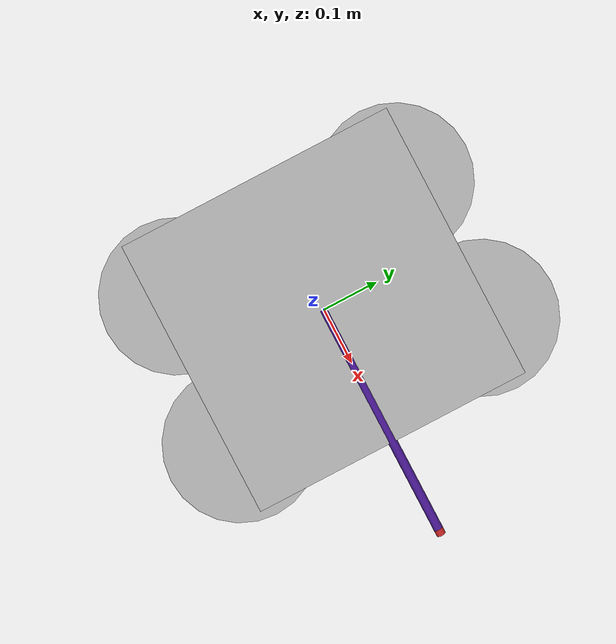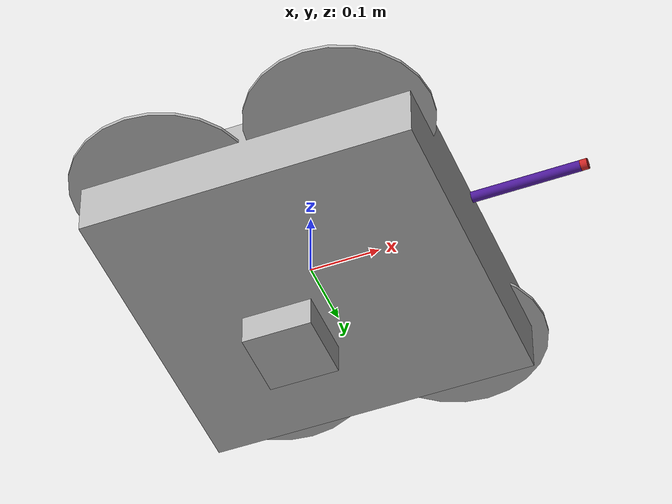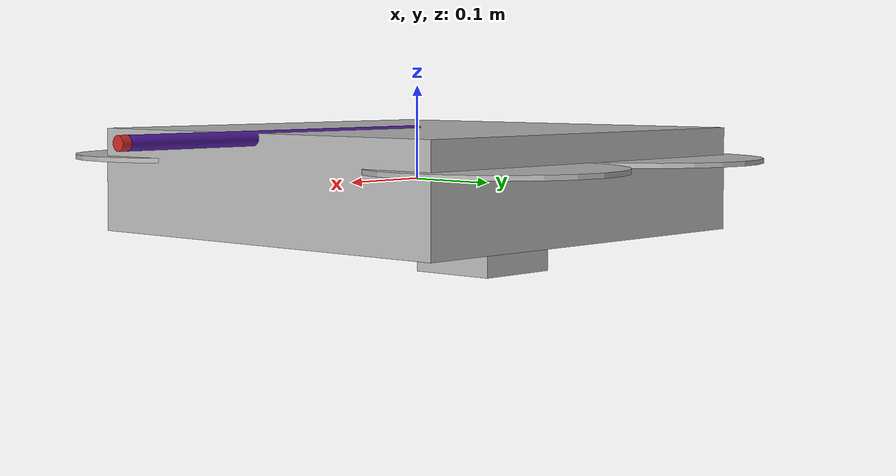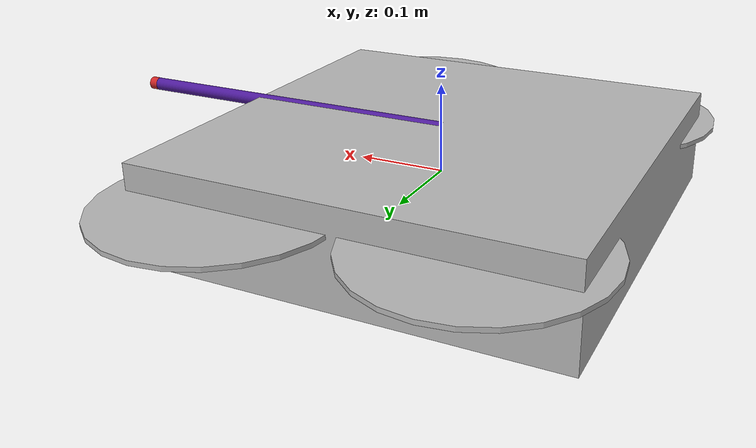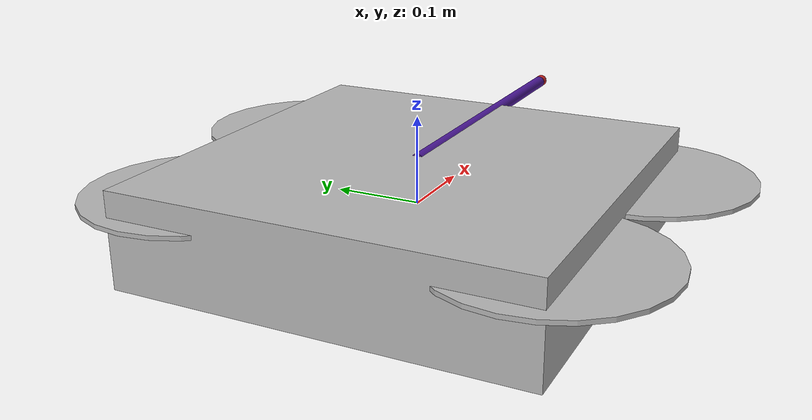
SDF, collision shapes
<?xml version='1.0'?>
<sdf version='1.5'>
  <model name='Test UAV'>

    <include>
      <uri>model://iris</uri>
    </include>

    <include>
      <uri>model://fpv_cam</uri>
      <pose>0 0 0 0 1.57 1.57</pose>
    </include>

    <joint name="fpv_cam_joint" type="fixed">
      <child>fpv_cam::link</child>
      <parent>iris::base_link</parent>
      <axis>
        <xyz>0 0 1</xyz>
        <limit>
          <upper>0</upper>
          <lower>0</lower>
        </limit>
      </axis>
    </joint>

    <!--定义连杆-->
    <link name="Link0">
	    <pose>0.195 0 0.05 0 -1.57 0</pose>
        <inertial>
          <mass>0.001</mass>
          <inertia>
            <ixx>1.3347395e-04</ixx>
            <ixy>0</ixy>
            <ixz>0</ixz>
            <iyy>1.3347395e-04</iyy>
            <iyz>0</iyz>
            <izz>2.8125e-06</izz>
          </inertia>
        </inertial>
      <collision name  = 'collision0'>
        <geometry>
		      <cylinder>
			      <radius>0.0075</radius>
            <length>0.39</length>
          </cylinder>
        </geometry>
        <max_contacts>10</max_contacts>
        <surface>
          <contact>
            <ode/>
          </contact>
          <bounce/>
          <friction>
            <ode/>
          </friction>
        </surface>
      </collision>
      <visual name='visual0'>
        <geometry>
		      <cylinder>
		      	<radius>0.0075</radius>
            <length>0.39</length>
          </cylinder>
        </geometry>
        <material>
          <script>
            <name>Gazebo/Indigo</name>
          </script>
        </material>
      </visual>
    </link>

    <joint name="Link0_joint" type="fixed">
      <child>Link0</child>
      <parent>iris::base_link</parent>
      <axis>
        <xyz>0 0 0</xyz>
        <limit>
          <upper>0</upper>
          <lower>0</lower>
        </limit>
      </axis>
    </joint>

    <link name="sensor_link">
      <pose>0.395 0 0.05 0 -1.57 0</pose>
      <inertial>
        <mass>0.01</mass>
        <inertia>
    	  <ixx>7.1441e-05</ixx>
    	  <ixy>0.0</ixy>
    	  <ixz>0.0</ixz>
    	  <iyy>7.146e-05</iyy>
    	  <iyz>0.0</iyz>
  	    <izz>1.3366e-05</izz>
        </inertia>
      </inertial>
      <collision name  = 'force_sensor_collision'>
        <geometry>
	  <cylinder>
	    <radius>0.0075</radius>
            <length>0.01</length>
          </cylinder>
        </geometry>
      </collision>
      <visual name='force_sensor_visual'>
        <geometry>
          <cylinder>
            <radius>0.0075</radius>
            <length>0.001</length>
          </cylinder>
        </geometry>
        <material>
          <script>
            <name>Gazebo/Red</name>
          </script>
        </material>
      </visual>
    </link>

    <joint name="force_sensor_joint" type="revolute">
      <child>sensor_link</child>
      <parent>Link0</parent>
      <axis>
        <limit>
          <lower>-1.57079</lower>
          <upper>1.57079</upper>
        </limit>
        <dynamics>
          <damping>0.000000</damping>
          <friction>0.000000</friction>
        </dynamics>
        <xyz>0.000000 0.000000 0.000000</xyz>
      </axis>
      <sensor name="force_torque" type="force_torque">
      </sensor>
    </joint>

    <plugin name="ft_sensor" filename="libgazebo_ros_ft_sensor.so">
      <updateRate>30.0</updateRate>
      <topicName>iris/force_sensor/ft_sensor_topic</topicName>
      <jointName>force_sensor_joint</jointName>
    </plugin>

  </model>
</sdf>

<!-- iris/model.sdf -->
<!-- DO NOT EDIT: Generated from iris.sdf.jinja -->
<sdf version='1.6'>
  <model name='iris'>
    <link name='base_link'>
      <pose>0 0 0 0 0 0</pose>
      <inertial>
        <pose>0 0 0 0 0 0</pose>
        <mass>1.5</mass>
        <inertia>
          <ixx>0.029125</ixx>
          <ixy>0</ixy>
          <ixz>0</ixz>
          <iyy>0.029125</iyy>
          <iyz>0</iyz>
          <izz>0.055225</izz>
        </inertia>
      </inertial>
      <collision name='base_link_inertia_collision'>
        <pose>0 0 0 0 0 0</pose>
        <geometry>
          <box>
            <size>0.47 0.47 0.11</size>
          </box>
        </geometry>
        <surface>
          <contact>
            <ode>
              <min_depth>0.001</min_depth>
              <max_vel>0</max_vel>
            </ode>
          </contact>
          <friction>
            <ode/>
          </friction>
        </surface>
      </collision>
      <visual name='base_link_inertia_visual'>
        <pose>0 0 0 0 0 0</pose>
        <geometry>
          <mesh>
            <scale>1 1 1</scale>
            <uri>model://iris/meshes/iris.stl</uri>
          </mesh>
        </geometry>
      </visual>
      <gravity>1</gravity>
      <velocity_decay/>
    </link>
    <link name='/imu_link'>
      <pose>0 0 0 0 0 0</pose>
      <inertial>
        <pose>0 0 0 0 0 0</pose>
        <mass>0.015</mass>
        <inertia>
          <ixx>1e-05</ixx>
          <ixy>0</ixy>
          <ixz>0</ixz>
          <iyy>1e-05</iyy>
          <iyz>0</iyz>
          <izz>1e-05</izz>
        </inertia>
      </inertial>
    </link>
    <joint name='/imu_joint' type='revolute'>
      <child>/imu_link</child>
      <parent>base_link</parent>
      <axis>
        <xyz>1 0 0</xyz>
        <limit>
          <lower>0</lower>
          <upper>0</upper>
          <effort>0</effort>
          <velocity>0</velocity>
        </limit>
        <dynamics>
          <spring_reference>0</spring_reference>
          <spring_stiffness>0</spring_stiffness>
        </dynamics>
        <use_parent_model_frame>1</use_parent_model_frame>
      </axis>
    </joint>
    <link name='rotor_0'>
      <pose>0.13 -0.22 0.023 0 0 0</pose>
      <inertial>
        <pose>0 0 0 0 0 0</pose>
        <mass>0.005</mass>
        <inertia>
          <ixx>9.75e-07</ixx>
          <ixy>0</ixy>
          <ixz>0</ixz>
          <iyy>0.000273104</iyy>
          <iyz>0</iyz>
          <izz>0.000274004</izz>
        </inertia>
      </inertial>
      <collision name='rotor_0_collision'>
        <pose>0 0 0 0 0 0</pose>
        <geometry>
          <cylinder>
            <length>0.005</length>
            <radius>0.128</radius>
          </cylinder>
        </geometry>
        <surface>
          <contact>
            <ode/>
          </contact>
          <friction>
            <ode/>
          </friction>
        </surface>
      </collision>
      <visual name='rotor_0_visual'>
        <pose>0 0 0 0 0 0</pose>
        <geometry>
          <mesh>
            <scale>1 1 1</scale>
            <uri>model://iris/meshes/iris_prop_ccw.dae</uri>
          </mesh>
        </geometry>
      </visual>
      <gravity>1</gravity>
      <velocity_decay/>
    </link>
    <joint name='rotor_0_joint' type='revolute'>
      <child>rotor_0</child>
      <parent>base_link</parent>
      <axis>
        <xyz>0 0 1</xyz>
        <limit>
          <lower>-1e+16</lower>
          <upper>1e+16</upper>
        </limit>
        <dynamics>
          <spring_reference>0</spring_reference>
          <spring_stiffness>0</spring_stiffness>
        </dynamics>
        <use_parent_model_frame>1</use_parent_model_frame>
      </axis>
    </joint>
    <link name='rotor_1'>
      <pose>-0.13 0.2 0.023 0 0 0</pose>
      <inertial>
        <pose>0 0 0 0 0 0</pose>
        <mass>0.005</mass>
        <inertia>
          <ixx>9.75e-07</ixx>
          <ixy>0</ixy>
          <ixz>0</ixz>
          <iyy>0.000273104</iyy>
          <iyz>0</iyz>
          <izz>0.000274004</izz>
        </inertia>
      </inertial>
      <collision name='rotor_1_collision'>
        <pose>0 0 0 0 0 0</pose>
        <geometry>
          <cylinder>
            <length>0.005</length>
            <radius>0.128</radius>
          </cylinder>
        </geometry>
        <surface>
          <contact>
            <ode/>
          </contact>
          <friction>
            <ode/>
          </friction>
        </surface>
      </collision>
      <visual name='rotor_1_visual'>
        <pose>0 0 0 0 0 0</pose>
        <geometry>
          <mesh>
            <scale>1 1 1</scale>
            <uri>model://iris/meshes/iris_prop_ccw.dae</uri>
          </mesh>
        </geometry>
      </visual>
      <gravity>1</gravity>
      <velocity_decay/>
    </link>
    <joint name='rotor_1_joint' type='revolute'>
      <child>rotor_1</child>
      <parent>base_link</parent>
      <axis>
        <xyz>0 0 1</xyz>
        <limit>
          <lower>-1e+16</lower>
          <upper>1e+16</upper>
        </limit>
        <dynamics>
          <spring_reference>0</spring_reference>
          <spring_stiffness>0</spring_stiffness>
        </dynamics>
        <use_parent_model_frame>1</use_parent_model_frame>
      </axis>
    </joint>
    <link name='rotor_2'>
      <pose>0.13 0.22 0.023 0 0 0</pose>
      <inertial>
        <pose>0 0 0 0 0 0</pose>
        <mass>0.005</mass>
        <inertia>
          <ixx>9.75e-07</ixx>
          <ixy>0</ixy>
          <ixz>0</ixz>
          <iyy>0.000273104</iyy>
          <iyz>0</iyz>
          <izz>0.000274004</izz>
        </inertia>
      </inertial>
      <collision name='rotor_2_collision'>
        <pose>0 0 0 0 0 0</pose>
        <geometry>
          <cylinder>
            <length>0.005</length>
            <radius>0.128</radius>
          </cylinder>
        </geometry>
        <surface>
          <contact>
            <ode/>
          </contact>
          <friction>
            <ode/>
          </friction>
        </surface>
      </collision>
      <visual name='rotor_2_visual'>
        <pose>0 0 0 0 0 0</pose>
        <geometry>
          <mesh>
            <scale>1 1 1</scale>
            <uri>model://iris/meshes/iris_prop_cw.dae</uri>
          </mesh>
        </geometry>
      </visual>
      <gravity>1</gravity>
      <velocity_decay/>
    </link>
    <joint name='rotor_2_joint' type='revolute'>
      <child>rotor_2</child>
      <parent>base_link</parent>
      <axis>
        <xyz>0 0 1</xyz>
        <limit>
          <lower>-1e+16</lower>
          <upper>1e+16</upper>
        </limit>
        <dynamics>
          <spring_reference>0</spring_reference>
          <spring_stiffness>0</spring_stiffness>
        </dynamics>
        <use_parent_model_frame>1</use_parent_model_frame>
      </axis>
    </joint>
    <link name='rotor_3'>
      <pose>-0.13 -0.2 0.023 0 0 0</pose>
      <inertial>
        <pose>0 0 0 0 0 0</pose>
        <mass>0.005</mass>
        <inertia>
          <ixx>9.75e-07</ixx>
          <ixy>0</ixy>
          <ixz>0</ixz>
          <iyy>0.000273104</iyy>
          <iyz>0</iyz>
          <izz>0.000274004</izz>
        </inertia>
      </inertial>
      <collision name='rotor_3_collision'>
        <pose>0 0 0 0 0 0</pose>
        <geometry>
          <cylinder>
            <length>0.005</length>
            <radius>0.128</radius>
          </cylinder>
        </geometry>
        <surface>
          <contact>
            <ode/>
          </contact>
          <friction>
            <ode/>
          </friction>
        </surface>
      </collision>
      <visual name='rotor_3_visual'>
        <pose>0 0 0 0 0 0</pose>
        <geometry>
          <mesh>
            <scale>1 1 1</scale>
            <uri>model://iris/meshes/iris_prop_cw.dae</uri>
          </mesh>
        </geometry>
      </visual>
      <gravity>1</gravity>
      <velocity_decay/>
    </link>
    <joint name='rotor_3_joint' type='revolute'>
      <child>rotor_3</child>
      <parent>base_link</parent>
      <axis>
        <xyz>0 0 1</xyz>
        <limit>
          <lower>-1e+16</lower>
          <upper>1e+16</upper>
        </limit>
        <dynamics>
          <spring_reference>0</spring_reference>
          <spring_stiffness>0</spring_stiffness>
        </dynamics>
        <use_parent_model_frame>1</use_parent_model_frame>
      </axis>
    </joint>
    <plugin name='rosbag' filename='libgazebo_multirotor_base_plugin.so'>
      <robotNamespace/>
      <linkName>base_link</linkName>
      <rotorVelocitySlowdownSim>10</rotorVelocitySlowdownSim>
    </plugin>
    <plugin name='front_right_motor_model' filename='libgazebo_motor_model.so'>
      <robotNamespace/>
      <jointName>rotor_0_joint</jointName>
      <linkName>rotor_0</linkName>
      <turningDirection>ccw</turningDirection>
      <timeConstantUp>0.0125</timeConstantUp>
      <timeConstantDown>0.025</timeConstantDown>
      <maxRotVelocity>1100</maxRotVelocity>
      <motorConstant>5.84e-06</motorConstant>
      <momentConstant>0.06</momentConstant>
      <commandSubTopic>/gazebo/command/motor_speed</commandSubTopic>
      <motorNumber>0</motorNumber>
      <rotorDragCoefficient>0.000175</rotorDragCoefficient>
      <rollingMomentCoefficient>1e-06</rollingMomentCoefficient>
      <motorSpeedPubTopic>/motor_speed/0</motorSpeedPubTopic>
      <rotorVelocitySlowdownSim>10</rotorVelocitySlowdownSim>
    </plugin>
    <plugin name='back_left_motor_model' filename='libgazebo_motor_model.so'>
      <robotNamespace/>
      <jointName>rotor_1_joint</jointName>
      <linkName>rotor_1</linkName>
      <turningDirection>ccw</turningDirection>
      <timeConstantUp>0.0125</timeConstantUp>
      <timeConstantDown>0.025</timeConstantDown>
      <maxRotVelocity>1100</maxRotVelocity>
      <motorConstant>5.84e-06</motorConstant>
      <momentConstant>0.06</momentConstant>
      <commandSubTopic>/gazebo/command/motor_speed</commandSubTopic>
      <motorNumber>1</motorNumber>
      <rotorDragCoefficient>0.000175</rotorDragCoefficient>
      <rollingMomentCoefficient>1e-06</rollingMomentCoefficient>
      <motorSpeedPubTopic>/motor_speed/1</motorSpeedPubTopic>
      <rotorVelocitySlowdownSim>10</rotorVelocitySlowdownSim>
    </plugin>
    <plugin name='front_left_motor_model' filename='libgazebo_motor_model.so'>
      <robotNamespace/>
      <jointName>rotor_2_joint</jointName>
      <linkName>rotor_2</linkName>
      <turningDirection>cw</turningDirection>
      <timeConstantUp>0.0125</timeConstantUp>
      <timeConstantDown>0.025</timeConstantDown>
      <maxRotVelocity>1100</maxRotVelocity>
      <motorConstant>5.84e-06</motorConstant>
      <momentConstant>0.06</momentConstant>
      <commandSubTopic>/gazebo/command/motor_speed</commandSubTopic>
      <motorNumber>2</motorNumber>
      <rotorDragCoefficient>0.000175</rotorDragCoefficient>
      <rollingMomentCoefficient>1e-06</rollingMomentCoefficient>
      <motorSpeedPubTopic>/motor_speed/2</motorSpeedPubTopic>
      <rotorVelocitySlowdownSim>10</rotorVelocitySlowdownSim>
    </plugin>
    <plugin name='back_right_motor_model' filename='libgazebo_motor_model.so'>
      <robotNamespace/>
      <jointName>rotor_3_joint</jointName>
      <linkName>rotor_3</linkName>
      <turningDirection>cw</turningDirection>
      <timeConstantUp>0.0125</timeConstantUp>
      <timeConstantDown>0.025</timeConstantDown>
      <maxRotVelocity>1100</maxRotVelocity>
      <motorConstant>5.84e-06</motorConstant>
      <momentConstant>0.06</momentConstant>
      <commandSubTopic>/gazebo/command/motor_speed</commandSubTopic>
      <motorNumber>3</motorNumber>
      <rotorDragCoefficient>0.000175</rotorDragCoefficient>
      <rollingMomentCoefficient>1e-06</rollingMomentCoefficient>
      <motorSpeedPubTopic>/motor_speed/3</motorSpeedPubTopic>
      <rotorVelocitySlowdownSim>10</rotorVelocitySlowdownSim>
    </plugin>
    <model name='gps0'>
      <link name='link'>
        <pose>0 0 0 0 0 0</pose>
        <inertial>
          <pose>0 0 0 0 0 0</pose>
          <mass>0.01</mass>
          <inertia>
            <ixx>2.1733e-06</ixx>
            <ixy>0</ixy>
            <ixz>0</ixz>
            <iyy>2.1733e-06</iyy>
            <iyz>0</iyz>
            <izz>1.8e-07</izz>
          </inertia>
        </inertial>
        <visual name='visual'>
          <geometry>
            <cylinder>
              <radius>0.01</radius>
              <length>0.002</length>
            </cylinder>
          </geometry>
        </visual>
        <sensor name='gps' type='gps'>
          <pose>0 0 0 0 0 0</pose>
          <plugin name='gps_plugin' filename='libgazebo_gps_plugin.so'>
            <robotNamespace/>
            <gpsNoise>1</gpsNoise>
            <gpsXYRandomWalk>2.0</gpsXYRandomWalk>
            <gpsZRandomWalk>4.0</gpsZRandomWalk>
            <gpsXYNoiseDensity>0.0002</gpsXYNoiseDensity>
            <gpsZNoiseDensity>0.0004</gpsZNoiseDensity>
            <gpsVXYNoiseDensity>0.2</gpsVXYNoiseDensity>
            <gpsVZNoiseDensity>0.4</gpsVZNoiseDensity>
          </plugin>
        </sensor>
      </link>
    </model>
    <joint name='gps0_joint' type='fixed'>
      <parent>base_link</parent>
      <child>gps0::link</child>
    </joint>
    <plugin name='groundtruth_plugin' filename='libgazebo_groundtruth_plugin.so'>
      <robotNamespace/>
    </plugin>
    <plugin name='magnetometer_plugin' filename='libgazebo_magnetometer_plugin.so'>
      <robotNamespace/>
      <pubRate>100</pubRate>
      <noiseDensity>0.0004</noiseDensity>
      <randomWalk>6.4e-06</randomWalk>
      <biasCorrelationTime>600</biasCorrelationTime>
      <magTopic>/mag</magTopic>
    </plugin>
    <plugin name='barometer_plugin' filename='libgazebo_barometer_plugin.so'>
      <robotNamespace/>
      <pubRate>50</pubRate>
      <baroTopic>/baro</baroTopic>
      <baroDriftPaPerSec>0</baroDriftPaPerSec>
    </plugin>
    <plugin name='mavlink_interface' filename='libgazebo_mavlink_interface.so'>
      <robotNamespace/>
      <imuSubTopic>/imu</imuSubTopic>
      <magSubTopic>/mag</magSubTopic>
      <baroSubTopic>/baro</baroSubTopic>
      <mavlink_addr>INADDR_ANY</mavlink_addr>
      <mavlink_tcp_port>{{ mavlink_tcp_port }}</mavlink_tcp_port>
      <mavlink_udp_port>{{ mavlink_udp_port }}</mavlink_udp_port>
      <serialEnabled>{{ serial_enabled }}</serialEnabled>
      <serialDevice>{{ serial_device }}</serialDevice>
      <baudRate>{{ serial_baudrate }}</baudRate>
      <qgc_addr>INADDR_ANY</qgc_addr>
      <qgc_udp_port>14550</qgc_udp_port>
      <sdk_addr>INADDR_ANY</sdk_addr>
      <sdk_udp_port>14540</sdk_udp_port>
      <hil_mode>{{ hil_mode }}</hil_mode>
      <hil_state_level>0</hil_state_level>
      <send_vision_estimation>0</send_vision_estimation>
      <send_odometry>1</send_odometry>
      <enable_lockstep>1</enable_lockstep>
      <use_tcp>1</use_tcp>
      <motorSpeedCommandPubTopic>/gazebo/command/motor_speed</motorSpeedCommandPubTopic>
      <control_channels>
        <channel name='rotor1'>
          <input_index>0</input_index>
          <input_offset>0</input_offset>
          <input_scaling>1000</input_scaling>
          <zero_position_disarmed>0</zero_position_disarmed>
          <zero_position_armed>100</zero_position_armed>
          <joint_control_type>velocity</joint_control_type>
        </channel>
        <channel name='rotor2'>
          <input_index>1</input_index>
          <input_offset>0</input_offset>
          <input_scaling>1000</input_scaling>
          <zero_position_disarmed>0</zero_position_disarmed>
          <zero_position_armed>100</zero_position_armed>
          <joint_control_type>velocity</joint_control_type>
        </channel>
        <channel name='rotor3'>
          <input_index>2</input_index>
          <input_offset>0</input_offset>
          <input_scaling>1000</input_scaling>
          <zero_position_disarmed>0</zero_position_disarmed>
          <zero_position_armed>100</zero_position_armed>
          <joint_control_type>velocity</joint_control_type>
        </channel>
        <channel name='rotor4'>
          <input_index>3</input_index>
          <input_offset>0</input_offset>
          <input_scaling>1000</input_scaling>
          <zero_position_disarmed>0</zero_position_disarmed>
          <zero_position_armed>100</zero_position_armed>
          <joint_control_type>velocity</joint_control_type>
        </channel>
        <channel name='rotor5'>
          <input_index>4</input_index>
          <input_offset>1</input_offset>
          <input_scaling>324.6</input_scaling>
          <zero_position_disarmed>0</zero_position_disarmed>
          <zero_position_armed>0</zero_position_armed>
          <joint_control_type>velocity</joint_control_type>
          <joint_control_pid>
            <p>0.1</p>
            <i>0</i>
            <d>0</d>
            <iMax>0.0</iMax>
            <iMin>0.0</iMin>
            <cmdMax>2</cmdMax>
            <cmdMin>-2</cmdMin>
          </joint_control_pid>
          <joint_name>zephyr_delta_wing::propeller_joint</joint_name>
        </channel>
        <channel name='rotor6'>
          <input_index>5</input_index>
          <input_offset>0</input_offset>
          <input_scaling>0.524</input_scaling>
          <zero_position_disarmed>0</zero_position_disarmed>
          <zero_position_armed>0</zero_position_armed>
          <joint_control_type>position</joint_control_type>
          <joint_name>zephyr_delta_wing::flap_left_joint</joint_name>
          <joint_control_pid>
            <p>10.0</p>
            <i>0</i>
            <d>0</d>
            <iMax>0</iMax>
            <iMin>0</iMin>
            <cmdMax>20</cmdMax>
            <cmdMin>-20</cmdMin>
          </joint_control_pid>
        </channel>
        <channel name='rotor7'>
          <input_index>6</input_index>
          <input_offset>0</input_offset>
          <input_scaling>0.524</input_scaling>
          <zero_position_disarmed>0</zero_position_disarmed>
          <zero_position_armed>0</zero_position_armed>
          <joint_control_type>position</joint_control_type>
          <joint_name>zephyr_delta_wing::flap_right_joint</joint_name>
          <joint_control_pid>
            <p>10.0</p>
            <i>0</i>
            <d>0</d>
            <iMax>0</iMax>
            <iMin>0</iMin>
            <cmdMax>20</cmdMax>
            <cmdMin>-20</cmdMin>
          </joint_control_pid>
        </channel>
        <channel name='rotor8'>
          <input_index>7</input_index>
          <input_offset>0</input_offset>
          <input_scaling>0.524</input_scaling>
          <zero_position_disarmed>0</zero_position_disarmed>
          <zero_position_armed>0</zero_position_armed>
          <joint_control_type>position</joint_control_type>
        </channel>
      </control_channels>
    </plugin>
    <static>0</static>
    <plugin name='rotors_gazebo_imu_plugin' filename='libgazebo_imu_plugin.so'>
      <robotNamespace/>
      <linkName>/imu_link</linkName>
      <imuTopic>/imu</imuTopic>
      <gyroscopeNoiseDensity>0.00018665</gyroscopeNoiseDensity>
      <gyroscopeRandomWalk>3.8785e-05</gyroscopeRandomWalk>
      <gyroscopeBiasCorrelationTime>1000.0</gyroscopeBiasCorrelationTime>
      <gyroscopeTurnOnBiasSigma>0.0087</gyroscopeTurnOnBiasSigma>
      <accelerometerNoiseDensity>0.00186</accelerometerNoiseDensity>
      <accelerometerRandomWalk>0.006</accelerometerRandomWalk>
      <accelerometerBiasCorrelationTime>300.0</accelerometerBiasCorrelationTime>
      <accelerometerTurnOnBiasSigma>0.196</accelerometerTurnOnBiasSigma>
    </plugin>
  </model>
</sdf>

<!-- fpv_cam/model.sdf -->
<sdf version='1.9'>
    <model name="fpv_cam">
        <pose>4 0 1.0 0 0.0 3.14</pose>
        <link name="fpv_cam/base_link">
        <pose>0.05 0.05 0.05 0 0 0</pose>
        <inertial>
            <mass>0.1</mass>
            <inertia>
            <ixx>0.000166667</ixx>
            <iyy>0.000166667</iyy>
            <izz>0.000166667</izz>
            </inertia>
        </inertial>
        <collision name="collision">
            <geometry>
            <box>
                <size>0.1 0.1 0.1</size>
            </box>
            </geometry>
        </collision>
        <visual name="visual">
            <geometry>
            <box>
                <size>0.01 0.03 0.028</size>
            </box>
            </geometry>
        </visual>
        <sensor name="camera" type="camera">
            <camera>
            <horizontal_fov>1.745</horizontal_fov>
            <image>
                <width>1280</width>
                <height>720</height>
            </image>
            <clip>
                <near>0.1</near>
                <far>1000</far>
            </clip>
            </camera>
            <always_on>1</always_on>
            <update_rate>30</update_rate>
            <visualize>true</visualize>
            <topic>camera</topic>
        </sensor>
        </link>
    </model>
</sdf>
